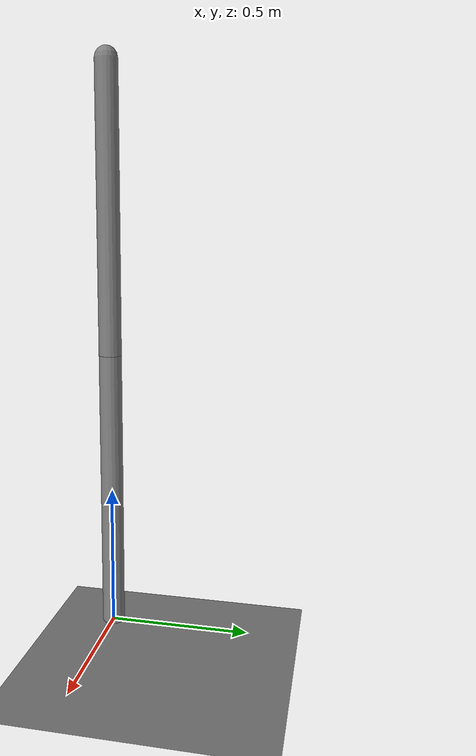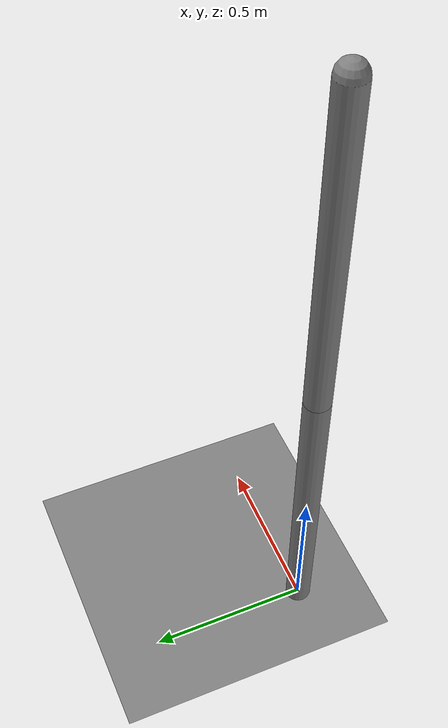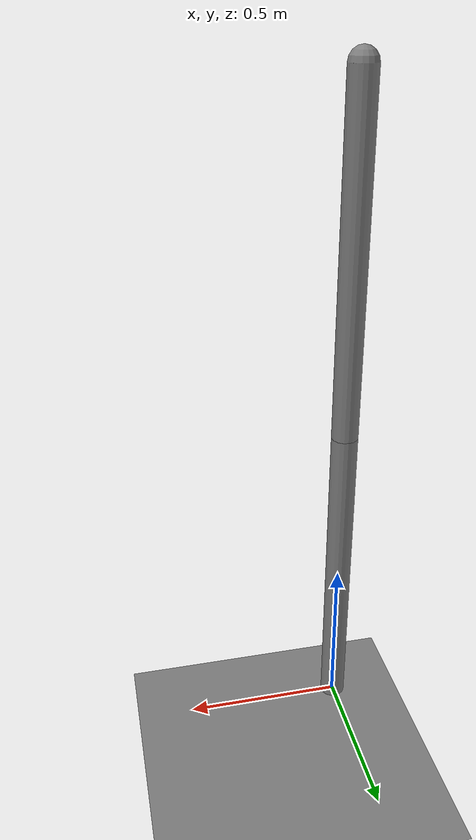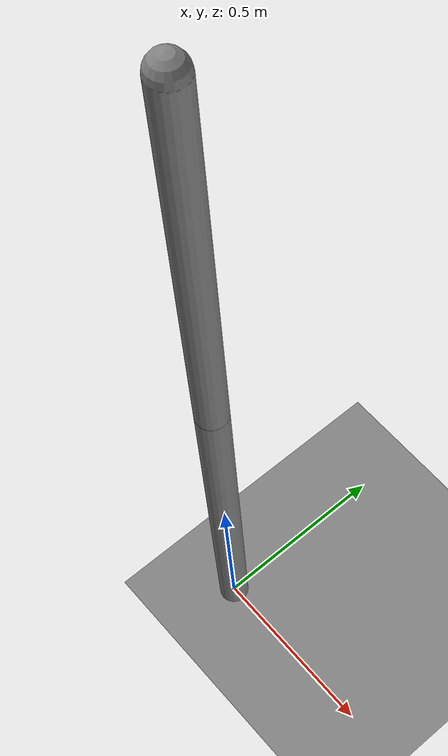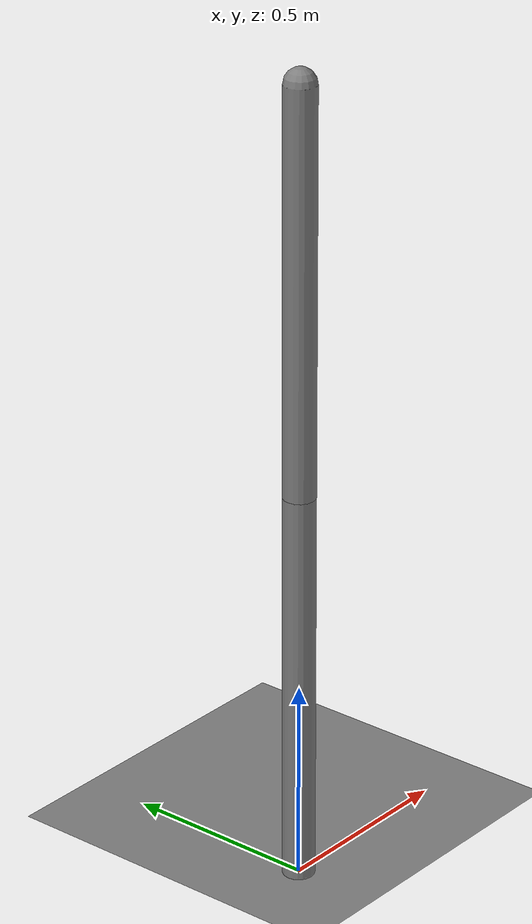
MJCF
<mujoco model="double_pendulum">

    <!-- Physics settings -->
    <option gravity="0 0 -9.81"/>

    <worldbody>

        <!-- Ground -->
        <geom type="plane" size="5 5 0.1"/>

        <!-- First Link -->
        <body name="link1" pos="0 0 2">

            <!-- Shoulder joint -->
            <joint name="shoulder"
                   type="hinge"
                   axis="0 1 0"/>

            <!-- First rod -->
            <geom name="rod1"
                  type="capsule"
                  fromto="0 0 0 0 0 -1"
                  size="0.04"/>

            <!-- Second Link -->
            <body name="link2" pos="0 0 -1">

                <!-- Elbow joint -->
                <joint name="elbow"
                       type="hinge"
                       axis="0 1 0"/>

                <!-- Second rod -->
                <geom name="rod2"
                      type="capsule"
                      fromto="0 0 0 0 0 -1"
                      size="0.04"/>

            </body>

        </body>

    </worldbody>

</mujoco>
